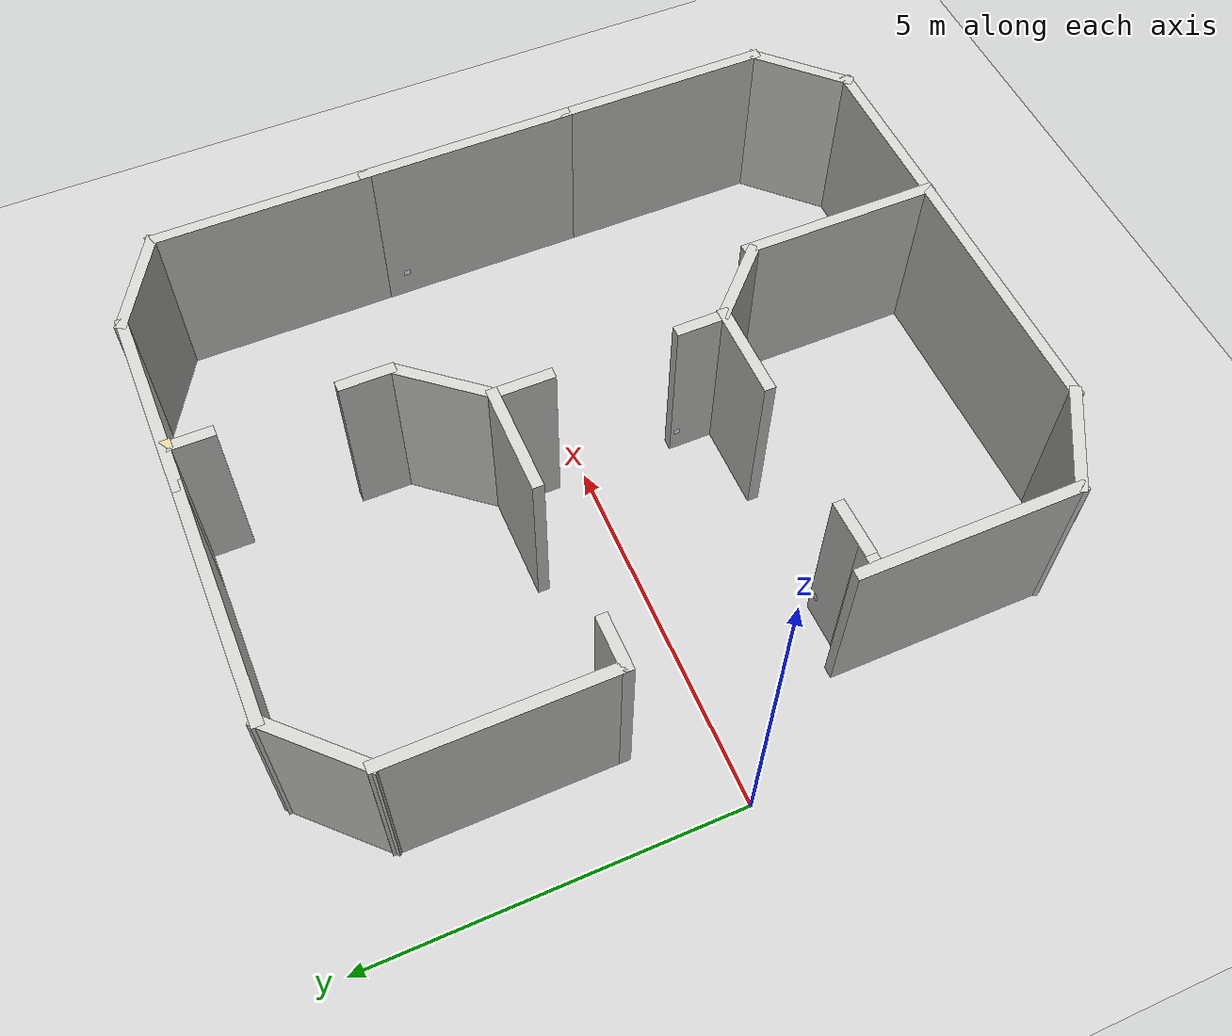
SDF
<sdf version="1.7">
 <world name="default">
  <light name="sun" type="directional">
   <pose>0 0 10 0 -0 0</pose>
   <diffuse>0.8 0.8 0.8 1</diffuse>
   <specular>0.2 0.2 0.2 1</specular>
   <attenuation>
    <range>1000</range>
    <constant>0.9</constant>
    <linear>0.01</linear>
    <quadratic>0.001</quadratic>
   </attenuation>
   <direction>-0.5 0.1 -0.9</direction>
   <spot><inner_angle>0</inner_angle><outer_angle>0</outer_angle><falloff>0</falloff></spot>
  </light>
  <model name="ground_plane">
   <static>1</static>
   <link name="link">
    <collision name="collision">
     <geometry><plane><normal>0 0 1</normal><size>100 100</size></plane></geometry>
     <surface>
      <contact><collide_bitmask>65535</collide_bitmask></contact>
      <friction><ode><mu>100</mu><mu2>50</mu2></ode></friction>
     </surface>
    </collision>
    <visual name="visual">
     <cast_shadows>0</cast_shadows>
     <geometry><plane><normal>0 0 1</normal><size>100 100</size></plane></geometry>
     <material>
      <script><uri>file://media/materials/scripts/gazebo.material</uri><name>Gazebo/Grey</name></script>
     </material>
    </visual>
   </link>
  </model>
  <gravity>0 0 -9.8</gravity>
  <magnetic_field>6e-06 2.3e-05 -4.2e-05</magnetic_field>
  <atmosphere type="adiabatic"/>
  <physics type="ode">
   <max_step_size>0.001</max_step_size>
   <real_time_factor>1</real_time_factor>
   <real_time_update_rate>1000</real_time_update_rate>
  </physics>
  <scene><ambient>0.4 0.4 0.4 1</ambient><background>0.7 0.7 0.7 1</background><shadows>1</shadows></scene>
  <spherical_coordinates>
   <surface_model>EARTH_WGS84</surface_model>
   <latitude_deg>0</latitude_deg>
   <longitude_deg>0</longitude_deg>
   <elevation>0</elevation>
   <heading_deg>0</heading_deg>
  </spherical_coordinates>
  <model name="TP_Scene4">
   <pose>4.52836 -0.135295 0 0 -0 0</pose>
   <link name="Wall_10">
    <collision name="Wall_10_Collision">
     <geometry><box><size>3 0.15 2.5</size></box></geometry>
     <pose>0 0 1.25 0 -0 0</pose>
    </collision>
    <visual name="Wall_10_Visual">
     <pose>0 0 1.25 0 -0 0</pose>
     <geometry><box><size>3 0.15 2.5</size></box></geometry>
     <material>
      <script><uri>file://media/materials/scripts/gazebo.material</uri><name>Gazebo/CeilingTiled</name></script>
      <ambient>0.921569 0.807843 0.615686 1</ambient>
     </material>
     <meta><layer>0</layer></meta>
    </visual>
    <pose>4.46408 0.139797 0 0 -0 -1.5708</pose>
   </link>
   <link name="Wall_11">
    <collision name="Wall_11_Collision">
     <geometry><box><size>3 0.15 2.5</size></box></geometry>
     <pose>0 0 1.25 0 -0 0</pose>
    </collision>
    <visual name="Wall_11_Visual">
     <pose>0 0 1.25 0 -0 0</pose>
     <geometry><box><size>3 0.15 2.5</size></box></geometry>
     <material>
      <script><uri>file://media/materials/scripts/gazebo.material</uri><name>Gazebo/CeilingTiled</name></script>
      <ambient>0.921569 0.807843 0.615686 1</ambient>
     </material>
     <meta><layer>0</layer></meta>
    </visual>
    <pose>4.46408 -2.7102 0 0 -0 -1.5708</pose>
   </link>
   <link name="Wall_12">
    <collision name="Wall_12_Collision">
     <geometry><box><size>1.5 0.15 2.5</size></box></geometry>
     <pose>0 0 1.25 0 -0 0</pose>
    </collision>
    <visual name="Wall_12_Visual">
     <pose>0 0 1.25 0 -0 0</pose>
     <geometry><box><size>1.5 0.15 2.5</size></box></geometry>
     <material>
      <script><uri>file://media/materials/scripts/gazebo.material</uri><name>Gazebo/CeilingTiled</name></script>
      <ambient>0.921569 0.807843 0.615686 1</ambient>
     </material>
     <meta><layer>0</layer></meta>
    </visual>
    <pose>3.98678 -4.6125 0 0 -0 -2.35619</pose>
   </link>
   <link name="Wall_13">
    <collision name="Wall_13_Collision">
     <geometry><box><size>2.32719 0.15 2.5</size></box></geometry>
     <pose>0 0 1.25 0 -0 0</pose>
    </collision>
    <visual name="Wall_13_Visual">
     <pose>0 0 1.25 0 -0 0</pose>
     <geometry><box><size>2.32719 0.15 2.5</size></box></geometry>
     <material>
      <script><uri>file://media/materials/scripts/gazebo.material</uri><name>Gazebo/CeilingTiled</name></script>
      <ambient>0.921569 0.807843 0.615686 1</ambient>
     </material>
     <meta><layer>0</layer></meta>
    </visual>
    <pose>2.42096 -5.09252 0 0 -0 -3.13909</pose>
   </link>
   <link name="Wall_14">
    <collision name="Wall_14_Collision">
     <geometry><box><size>3.67337 0.15 2.5</size></box></geometry>
     <pose>0 0 1.25 0 -0 0</pose>
    </collision>
    <visual name="Wall_14_Visual">
     <pose>0 0 1.25 0 -0 0</pose>
     <geometry><box><size>3.67337 0.15 2.5</size></box></geometry>
     <material>
      <script><uri>file://media/materials/scripts/gazebo.material</uri><name>Gazebo/CeilingTiled</name></script>
      <ambient>0.921569 0.807843 0.615686 1</ambient>
     </material>
     <meta><layer>0</layer></meta>
    </visual>
    <pose>-0.429041 -5.09252 0 0 -0 3.14005</pose>
   </link>
   <link name="Wall_15">
    <collision name="Wall_15_Collision">
     <geometry><box><size>1.5 0.15 2.5</size></box></geometry>
     <pose>0 0 1.25 0 -0 0</pose>
    </collision>
    <visual name="Wall_15_Visual">
     <pose>0 0 1.25 0 -0 0</pose>
     <geometry><box><size>1.5 0.15 2.5</size></box></geometry>
     <material>
      <script><uri>file://media/materials/scripts/gazebo.material</uri><name>Gazebo/CeilingTiled</name></script>
      <ambient>0.921569 0.807843 0.615686 1</ambient>
     </material>
     <meta><layer>0</layer></meta>
    </visual>
    <pose>-2.77508 -4.7523 0 0 -0 2.61799</pose>
   </link>
   <link name="Wall_2">
    <collision name="Wall_2_Collision">
     <geometry><box><size>3 0.15 2.5</size></box></geometry>
     <pose>0 0 1.25 0 -0 0</pose>
    </collision>
    <visual name="Wall_2_Visual">
     <pose>0 0 1.25 0 -0 0</pose>
     <geometry><box><size>3 0.15 2.5</size></box></geometry>
     <material>
      <script><uri>file://media/materials/scripts/gazebo.material</uri><name>Gazebo/CeilingTiled</name></script>
      <ambient>0.921569 0.807843 0.615686 1</ambient>
     </material>
     <meta><layer>0</layer></meta>
    </visual>
    <pose>-3.35965 -2.9898 0 0 -0 1.5708</pose>
   </link>
   <link name="Wall_36">
    <collision name="Wall_36_Collision">
     <geometry><box><size>0.75 0.15 2.5</size></box></geometry>
     <pose>0 0 1.25 0 -0 0</pose>
    </collision>
    <visual name="Wall_36_Visual">
     <pose>0 0 1.25 0 -0 0</pose>
     <geometry><box><size>0.75 0.15 2.5</size></box></geometry>
     <material>
      <script><uri>file://media/materials/scripts/gazebo.material</uri><name>Gazebo/CeilingTiled</name></script>
      <ambient>0.921569 0.807843 0.615686 1</ambient>
     </material>
     <meta><layer>0</layer></meta>
    </visual>
    <pose>-3.05965 1.2852 0 0 -0 0</pose>
   </link>
   <link name="Wall_38">
    <collision name="Wall_38_Collision">
     <geometry><box><size>1.5 0.15 2.5</size></box></geometry>
     <pose>0 0 1.25 0 -0 0</pose>
    </collision>
    <visual name="Wall_38_Visual">
     <pose>0 0 1.25 0 -0 0</pose>
     <geometry><box><size>1.5 0.15 2.5</size></box></geometry>
     <material>
      <script><uri>file://media/materials/scripts/gazebo.material</uri><name>Gazebo/CeilingTiled</name></script>
      <ambient>0.921569 0.807843 0.615686 1</ambient>
     </material>
     <meta><layer>0</layer></meta>
    </visual>
    <pose>-0.160322 1.29326 0 0 -0 0</pose>
   </link>
   <link name="Wall_4">
    <collision name="Wall_4_Collision">
     <geometry><box><size>3 0.15 2.5</size></box></geometry>
     <pose>0 0 1.25 0 -0 0</pose>
    </collision>
    <visual name="Wall_4_Visual">
     <pose>0 0 1.25 0 -0 0</pose>
     <geometry><box><size>3 0.15 2.5</size></box></geometry>
     <material>
      <script><uri>file://media/materials/scripts/gazebo.material</uri><name>Gazebo/CeilingTiled</name></script>
      <ambient>0.921569 0.807843 0.615686 1</ambient>
     </material>
     <meta><layer>0</layer></meta>
    </visual>
    <pose>-3.35965 2.7102 0 0 -0 1.5708</pose>
   </link>
   <link name="Wall_41">
    <collision name="Wall_41_Collision">
     <geometry><box><size>1.36573 0.15 2.5</size></box></geometry>
     <pose>0 0 1.25 0 -0 0</pose>
    </collision>
    <visual name="Wall_41_Visual">
     <pose>0 0 1.25 0 -0 0</pose>
     <geometry><box><size>1.36573 0.15 2.5</size></box></geometry>
     <material>
      <script><uri>file://media/materials/scripts/gazebo.material</uri><name>Gazebo/CeilingTiled</name></script>
      <ambient>0.921569 0.807843 0.615686 1</ambient>
     </material>
     <meta><layer>0</layer></meta>
    </visual>
    <pose>0.903586 1.74303 0 0 -0 0.876563</pose>
   </link>
   <link name="Wall_43">
    <collision name="Wall_43_Collision">
     <geometry><box><size>0.843478 0.15 2.5</size></box></geometry>
     <pose>0 0 1.25 0 -0 0</pose>
    </collision>
    <visual name="Wall_43_Visual">
     <pose>0 0 1.25 0 -0 0</pose>
     <geometry><box><size>0.843478 0.15 2.5</size></box></geometry>
     <material>
      <script><uri>file://media/materials/scripts/gazebo.material</uri><name>Gazebo/CeilingTiled</name></script>
      <ambient>0.921569 0.807843 0.615686 1</ambient>
     </material>
     <meta><layer>0</layer></meta>
    </visual>
    <pose>0.514678 0.929125 0 0 -0 -1.5708</pose>
   </link>
   <link name="Wall_45">
    <collision name="Wall_45_Collision">
     <geometry><box><size>0.75 0.15 2.5</size></box></geometry>
     <pose>0 0 1.25 0 -0 0</pose>
    </collision>
    <visual name="Wall_45_Visual">
     <pose>0 0 1.25 0 -0 0</pose>
     <geometry><box><size>0.75 0.15 2.5</size></box></geometry>
     <material>
      <script><uri>file://media/materials/scripts/gazebo.material</uri><name>Gazebo/CeilingTiled</name></script>
      <ambient>0.921569 0.807843 0.615686 1</ambient>
     </material>
     <meta><layer>0</layer></meta>
    </visual>
    <pose>0.499376 -1.4648 0 0 -0 -1.5708</pose>
   </link>
   <link name="Wall_46">
    <collision name="Wall_46_Collision">
     <geometry><box><size>1.25 0.15 2.5</size></box></geometry>
     <pose>0 0 1.25 0 -0 0</pose>
    </collision>
    <visual name="Wall_46_Visual">
     <pose>0 0 1.25 0 -0 0</pose>
     <geometry><box><size>1.25 0.15 2.5</size></box></geometry>
     <material>
      <script><uri>file://media/materials/scripts/gazebo.material</uri><name>Gazebo/CeilingTiled</name></script>
      <ambient>0.921569 0.807843 0.615686 1</ambient>
     </material>
     <meta><layer>0</layer></meta>
    </visual>
    <pose>0.905287 -2.15371 0 0 -0 -0.785398</pose>
   </link>
   <link name="Wall_49">
    <collision name="Wall_49_Collision">
     <geometry><box><size>2.75 0.15 2.5</size></box></geometry>
     <pose>0 0 1.25 0 -0 0</pose>
    </collision>
    <visual name="Wall_49_Visual">
     <pose>0 0 1.25 0 -0 0</pose>
     <geometry><box><size>2.75 0.15 2.5</size></box></geometry>
     <material>
      <script><uri>file://media/materials/scripts/gazebo.material</uri><name>Gazebo/CeilingTiled</name></script>
      <ambient>0.921569 0.807843 0.615686 1</ambient>
     </material>
     <meta><layer>0</layer></meta>
    </visual>
    <pose>1.33244 -3.80496 0 0 -0 1.5708</pose>
   </link>
   <link name="Wall_5">
    <collision name="Wall_5_Collision">
     <geometry><box><size>1.5 0.15 2.5</size></box></geometry>
     <pose>0 0 1.25 0 -0 0</pose>
    </collision>
    <visual name="Wall_5_Visual">
     <pose>0 0 1.25 0 -0 0</pose>
     <geometry><box><size>1.5 0.15 2.5</size></box></geometry>
     <material>
      <script><uri>file://media/materials/scripts/gazebo.material</uri><name>Gazebo/CeilingTiled</name></script>
      <ambient>0.921569 0.807843 0.615686 1</ambient>
     </material>
     <meta><layer>0</layer></meta>
    </visual>
    <pose>-2.88236 4.6125 0 0 -0 0.785398</pose>
   </link>
   <link name="Wall_55">
    <collision name="Wall_55_Collision">
     <geometry><box><size>1.32603 0.15 2.5</size></box></geometry>
     <pose>0 0 1.25 0 -0 0</pose>
    </collision>
    <visual name="Wall_55_Visual">
     <pose>0 0 1.25 0 -0 0</pose>
     <geometry><box><size>1.32603 0.15 2.5</size></box></geometry>
     <material>
      <script><uri>file://media/materials/scripts/gazebo.material</uri><name>Gazebo/CeilingTiled</name></script>
      <ambient>0.921569 0.807843 0.615686 1</ambient>
     </material>
     <meta><layer>0</layer></meta>
    </visual>
    <pose>-0.071637 -1.7648 0 0 -0 3.14159</pose>
   </link>
   <link name="Wall_57">
    <collision name="Wall_57_Collision">
     <geometry><box><size>0.761217 0.15 2.5</size></box></geometry>
     <pose>0 0 1.25 0 -0 0</pose>
    </collision>
    <visual name="Wall_57_Visual">
     <pose>0 0 1.25 0 -0 0</pose>
     <geometry><box><size>0.761217 0.15 2.5</size></box></geometry>
     <material>
      <script><uri>file://media/materials/scripts/gazebo.material</uri><name>Gazebo/CeilingTiled</name></script>
      <ambient>0.921569 0.807843 0.615686 1</ambient>
     </material>
     <meta><layer>0</layer></meta>
    </visual>
    <pose>-2.81521 -1.77035 0 0 -0 -3.1234</pose>
   </link>
   <link name="Wall_58">
    <collision name="Wall_58_Collision">
     <geometry><box><size>0.25 0.15 2.5</size></box></geometry>
     <pose>0 0 1.25 0 -0 0</pose>
    </collision>
    <visual name="Wall_58_Visual">
     <pose>0 0 1.25 0 -0 0</pose>
     <geometry><box><size>0.25 0.15 2.5</size></box></geometry>
     <material>
      <script><uri>file://media/materials/scripts/gazebo.material</uri><name>Gazebo/CeilingTiled</name></script>
      <ambient>0.921569 0.807843 0.615686 1</ambient>
     </material>
     <meta><layer>0</layer></meta>
    </visual>
    <pose>-3.16521 -1.77035 0 0 -0 3.14159</pose>
   </link>
   <link name="Wall_6">
    <collision name="Wall_6_Collision">
     <geometry><box><size>3.29398 0.15 2.5</size></box></geometry>
     <pose>0 0 1.25 0 -0 0</pose>
    </collision>
    <visual name="Wall_6_Visual">
     <pose>0 0 1.25 0 -0 0</pose>
     <geometry><box><size>3.29398 0.15 2.5</size></box></geometry>
     <material>
      <script><uri>file://media/materials/scripts/gazebo.material</uri><name>Gazebo/CeilingTiled</name></script>
      <ambient>0.921569 0.807843 0.615686 1</ambient>
     </material>
     <meta><layer>0</layer></meta>
    </visual>
    <pose>-0.833066 5.0898 0 0 -0 0</pose>
   </link>
   <link name="Wall_61">
    <collision name="Wall_61_Collision">
     <geometry><box><size>0.75 0.15 2.5</size></box></geometry>
     <pose>0 0 1.25 0 -0 0</pose>
    </collision>
    <visual name="Wall_61_Visual">
     <pose>0 0 1.25 0 -0 0</pose>
     <geometry><box><size>0.75 0.15 2.5</size></box></geometry>
     <material>
      <script><uri>file://media/materials/scripts/gazebo.material</uri><name>Gazebo/CeilingTiled</name></script>
      <ambient>0.921569 0.807843 0.615686 1</ambient>
     </material>
     <meta><layer>0</layer></meta>
    </visual>
    <pose>1.34726 2.60179 0 0 -0 1.5708</pose>
   </link>
   <link name="Wall_63">
    <collision name="Wall_63_Collision">
     <geometry><box><size>0.666573 0.15 2.5</size></box></geometry>
     <pose>0 0 1.25 0 -0 0</pose>
    </collision>
    <visual name="Wall_63_Visual">
     <pose>0 0 1.25 0 -0 0</pose>
     <geometry><box><size>0.666573 0.15 2.5</size></box></geometry>
     <material>
      <script><uri>file://media/materials/scripts/gazebo.material</uri><name>Gazebo/CeilingTiled</name></script>
      <ambient>0.921569 0.807843 0.615686 1</ambient>
     </material>
     <meta><layer>0</layer></meta>
    </visual>
    <pose>1.31326 4.80594 0 0 -0 1.5708</pose>
   </link>
   <link name="Wall_64">
    <collision name="Wall_64_Collision">
     <geometry><box><size>0.16 0.15 2.5</size></box></geometry>
     <pose>0 0 1.25 0 -0 0</pose>
    </collision>
    <visual name="Wall_64_Visual">
     <pose>0 0 1.25 0 -0 0</pose>
     <geometry><box><size>0.16 0.15 2.5</size></box></geometry>
     <material>
      <script><uri>file://media/materials/scripts/gazebo.material</uri><name>Gazebo/Grey</name></script>
      <ambient>0.921569 0.807843 0.615686 1</ambient>
     </material>
     <meta><layer>0</layer></meta>
    </visual>
    <pose>1.33338 5.06412 0 0 -0 0</pose>
   </link>
   <link name="Wall_7">
    <collision name="Wall_7_Collision">
     <geometry><box><size>2.70602 0.15 2.5</size></box></geometry>
     <pose>0 0 1.25 0 -0 0</pose>
    </collision>
    <visual name="Wall_7_Visual">
     <pose>0 0 1.25 0 -0 0</pose>
     <geometry><box><size>2.70602 0.15 2.5</size></box></geometry>
     <material>
      <script><uri>file://media/materials/scripts/gazebo.material</uri><name>Gazebo/CeilingTiled</name></script>
      <ambient>0.921569 0.807843 0.615686 1</ambient>
     </material>
     <meta><layer>0</layer></meta>
    </visual>
    <pose>2.01693 5.0898 0 0 -0 0</pose>
   </link>
   <link name="Wall_8">
    <collision name="Wall_8_Collision">
     <geometry><box><size>1.5 0.15 2.5</size></box></geometry>
     <pose>0 0 1.25 0 -0 0</pose>
    </collision>
    <visual name="Wall_8_Visual">
     <pose>0 0 1.25 0 -0 0</pose>
     <geometry><box><size>1.5 0.15 2.5</size></box></geometry>
     <material>
      <script><uri>file://media/materials/scripts/gazebo.material</uri><name>Gazebo/CeilingTiled</name></script>
      <ambient>0.921569 0.807843 0.615686 1</ambient>
     </material>
     <meta><layer>0</layer></meta>
    </visual>
    <pose>3.87951 4.7523 0 0 -0 -0.523599</pose>
   </link>
   <link name="Wall_9">
    <collision name="Wall_9_Collision">
     <geometry><box><size>3 0.15 2.5</size></box></geometry>
     <pose>0 0 1.25 0 -0 0</pose>
    </collision>
    <visual name="Wall_9_Visual">
     <pose>0 0 1.25 0 -0 0</pose>
     <geometry><box><size>3 0.15 2.5</size></box></geometry>
     <material>
      <script><uri>file://media/materials/scripts/gazebo.material</uri><name>Gazebo/CeilingTiled</name></script>
      <ambient>0.921569 0.807843 0.615686 1</ambient>
     </material>
     <meta><layer>0</layer></meta>
    </visual>
    <pose>4.46408 2.9898 0 0 -0 -1.5708</pose>
   </link>
   <static>1</static>
  </model>
  <model name="aruco_visual_marker_0">
   <link name="marker">
    <visual name="visual">
     <geometry><box><size>0.09 0.09 0.001</size></box></geometry>
     <material>
      <script>
       <uri>model://aruco_visual_marker_0/materials/scripts</uri>
       <uri>model://aruco_visual_marker_0/materials/textures</uri>
       <name>ArucoVisualMarker0/Marker</name>
      </script>
      <ambient>1 1 1 1</ambient>
      <diffuse>1 1 1 1</diffuse>
      <specular>0 0 0 1</specular>
      <emissive>1 1 1 0</emissive>
      <shader type="vertex"><normal_map>__default__</normal_map></shader>
     </material>
    </visual>
    <collision name="collision"><geometry><box><size>0.09 0.09 0.001</size></box></geometry></collision>
   </link>
   <link name="marker_pad">
    <pose relative_to="marker">0 0 -1e-05 0 -0 0</pose>
    <visual name="visual">
     <geometry><box><size>0.09 0.09 0.001</size></box></geometry>
     <material>
      <lighting>1</lighting>
      <script><uri>file://media/materials/scripts/gazebo.material</uri><name>Gazebo/White</name></script>
      <ambient>0.3 0.3 0.3 1</ambient>
      <diffuse>0.7 0.7 0.7 1</diffuse>
      <specular>0.01 0.01 0.01 1</specular>
      <emissive>1 1 1 0</emissive>
      <shader type="vertex"><normal_map>__default__</normal_map></shader>
     </material>
    </visual>
    <collision name="collision"><geometry><box><size>0.09 0.09 0.001</size></box></geometry></collision>
   </link>
   <joint name="marker_JOINT_marker_pad" type="revolute">
    <parent>marker</parent>
    <child>marker_pad</child>
    <axis>
     <xyz>0 0 1</xyz>
     <limit><upper>0</upper><lower>0</lower></limit>
     <dynamics><spring_reference>0</spring_reference><spring_stiffness>0</spring_stiffness></dynamics>
    </axis>
   </joint>
   <static>1</static>
   <pose>4.94322 -1.30837 0.380147 1.5711 0.000818 -1.5708</pose>
  </model>
  <model name="aruco_visual_marker_1">
   <link name="marker">
    <visual name="visual">
     <geometry><box><size>0.09 0.09 0.001</size></box></geometry>
     <material>
      <script>
       <uri>model://aruco_visual_marker_1/materials/scripts</uri>
       <uri>model://aruco_visual_marker_1/materials/textures</uri>
       <name>ArucoVisualMarker1/Marker</name>
      </script>
      <ambient>1 1 1 1</ambient>
      <diffuse>1 1 1 1</diffuse>
      <specular>0 0 0 1</specular>
      <emissive>1 1 1 0</emissive>
      <shader type="vertex"><normal_map>__default__</normal_map></shader>
     </material>
    </visual>
    <collision name="collision"><geometry><box><size>0.09 0.09 0.001</size></box></geometry></collision>
   </link>
   <link name="marker_pad">
    <pose relative_to="marker">0 0 -1e-05 0 -0 0</pose>
    <visual name="visual">
     <geometry><box><size>0.09 0.09 0.001</size></box></geometry>
     <material>
      <lighting>1</lighting>
      <script><uri>file://media/materials/scripts/gazebo.material</uri><name>Gazebo/White</name></script>
      <ambient>0.3 0.3 0.3 1</ambient>
      <diffuse>0.7 0.7 0.7 1</diffuse>
      <specular>0.01 0.01 0.01 1</specular>
      <emissive>1 1 1 0</emissive>
      <shader type="vertex"><normal_map>__default__</normal_map></shader>
     </material>
    </visual>
    <collision name="collision"><geometry><box><size>0.09 0.09 0.001</size></box></geometry></collision>
   </link>
   <joint name="marker_JOINT_marker_pad" type="revolute">
    <parent>marker</parent>
    <child>marker_pad</child>
    <axis>
     <xyz>0 0 1</xyz>
     <limit><upper>0</upper><lower>0</lower></limit>
     <dynamics><spring_reference>0</spring_reference><spring_stiffness>0</spring_stiffness></dynamics>
    </axis>
   </joint>
   <static>1</static>
   <pose>3.8181 1.07915 0.364218 1.5708 -0.001409 -0.00573</pose>
  </model>
  <model name="aruco_visual_marker_2">
   <link name="marker">
    <visual name="visual">
     <geometry><box><size>0.09 0.09 0.001</size></box></geometry>
     <material>
      <script>
       <uri>model://aruco_visual_marker_2/materials/scripts</uri>
       <uri>model://aruco_visual_marker_2/materials/textures</uri>
       <name>ArucoVisualMarker2/Marker</name>
      </script>
      <ambient>1 1 1 1</ambient>
      <diffuse>1 1 1 1</diffuse>
      <specular>0 0 0 1</specular>
      <emissive>1 1 1 0</emissive>
      <shader type="vertex"><normal_map>__default__</normal_map></shader>
     </material>
    </visual>
    <collision name="collision"><geometry><box><size>0.09 0.09 0.001</size></box></geometry></collision>
   </link>
   <link name="marker_pad">
    <pose relative_to="marker">0 0 -1e-05 0 -0 0</pose>
    <visual name="visual">
     <geometry><box><size>0.09 0.09 0.001</size></box></geometry>
     <material>
      <lighting>1</lighting>
      <script><uri>file://media/materials/scripts/gazebo.material</uri><name>Gazebo/White</name></script>
      <ambient>0.3 0.3 0.3 1</ambient>
      <diffuse>0.7 0.7 0.7 1</diffuse>
      <specular>0.01 0.01 0.01 1</specular>
      <emissive>1 1 1 0</emissive>
      <shader type="vertex"><normal_map>__default__</normal_map></shader>
     </material>
    </visual>
    <collision name="collision"><geometry><box><size>0.09 0.09 0.001</size></box></geometry></collision>
   </link>
   <joint name="marker_JOINT_marker_pad" type="revolute">
    <parent>marker</parent>
    <child>marker_pad</child>
    <axis>
     <xyz>0 0 1</xyz>
     <limit><upper>0</upper><lower>0</lower></limit>
     <dynamics><spring_reference>0</spring_reference><spring_stiffness>0</spring_stiffness></dynamics>
    </axis>
   </joint>
   <static>1</static>
   <pose>1.98387 -1.82306 0.443663 1.5677 0.033309 3.14149</pose>
  </model>
  <model name="aruco_visual_marker_4">
   <link name="marker">
    <visual name="visual">
     <geometry><box><size>0.09 0.09 0.001</size></box></geometry>
     <material>
      <script>
       <uri>model://aruco_visual_marker_4/materials/scripts</uri>
       <uri>model://aruco_visual_marker_4/materials/textures</uri>
       <name>ArucoVisualMarker4/Marker</name>
      </script>
      <ambient>1 1 1 1</ambient>
      <diffuse>1 1 1 1</diffuse>
      <specular>0 0 0 1</specular>
      <emissive>1 1 1 0</emissive>
      <shader type="vertex"><normal_map>__default__</normal_map></shader>
     </material>
    </visual>
    <collision name="collision"><geometry><box><size>0.09 0.09 0.001</size></box></geometry></collision>
   </link>
   <link name="marker_pad">
    <pose relative_to="marker">0 0 -1e-05 0 -0 0</pose>
    <visual name="visual">
     <geometry><box><size>0.09 0.09 0.001</size></box></geometry>
     <material>
      <lighting>1</lighting>
      <script><uri>file://media/materials/scripts/gazebo.material</uri><name>Gazebo/White</name></script>
      <ambient>0.3 0.3 0.3 1</ambient>
      <diffuse>0.7 0.7 0.7 1</diffuse>
      <specular>0.01 0.01 0.01 1</specular>
      <emissive>1 1 1 0</emissive>
      <shader type="vertex"><normal_map>__default__</normal_map></shader>
     </material>
    </visual>
    <collision name="collision"><geometry><box><size>0.09 0.09 0.001</size></box></geometry></collision>
   </link>
   <joint name="marker_JOINT_marker_pad" type="revolute">
    <parent>marker</parent>
    <child>marker_pad</child>
    <axis>
     <xyz>0 0 1</xyz>
     <limit><upper>0</upper><lower>0</lower></limit>
     <dynamics><spring_reference>0</spring_reference><spring_stiffness>0</spring_stiffness></dynamics>
    </axis>
   </joint>
   <static>1</static>
   <pose>8.91168 1.07119 0.424207 1.57116 -0.000482 -1.5708</pose>
  </model>
 </world>
</sdf>
